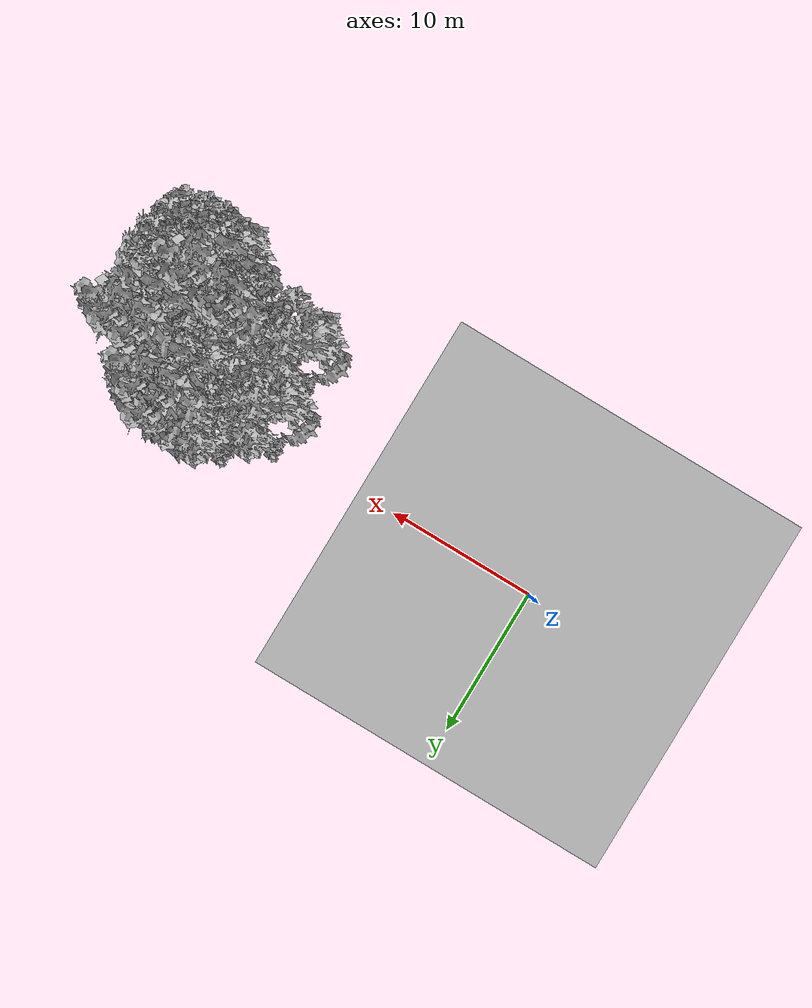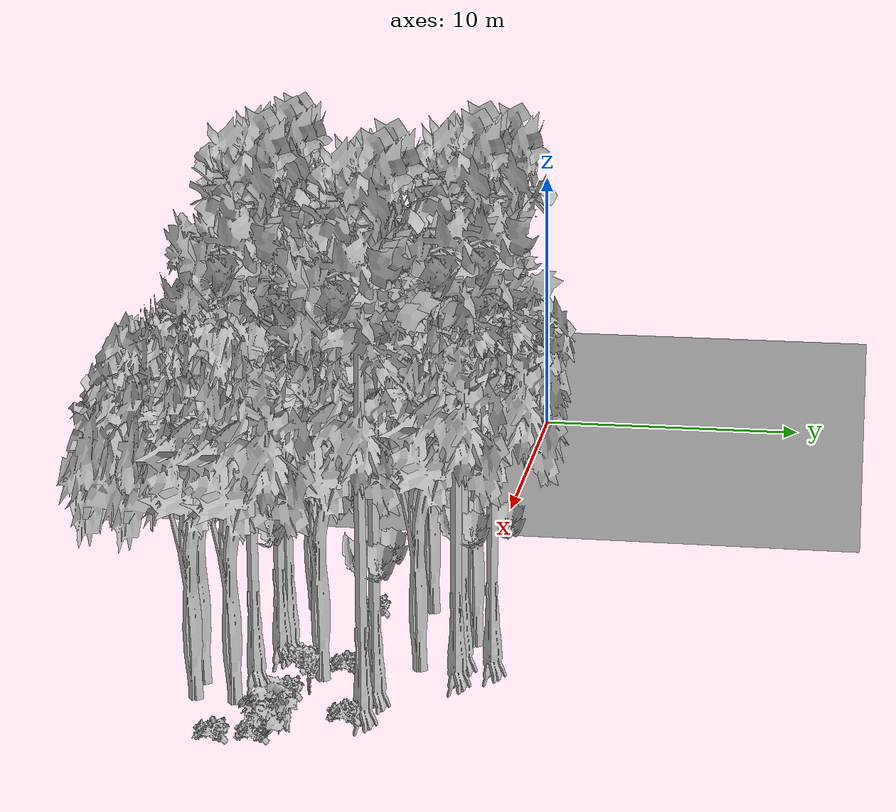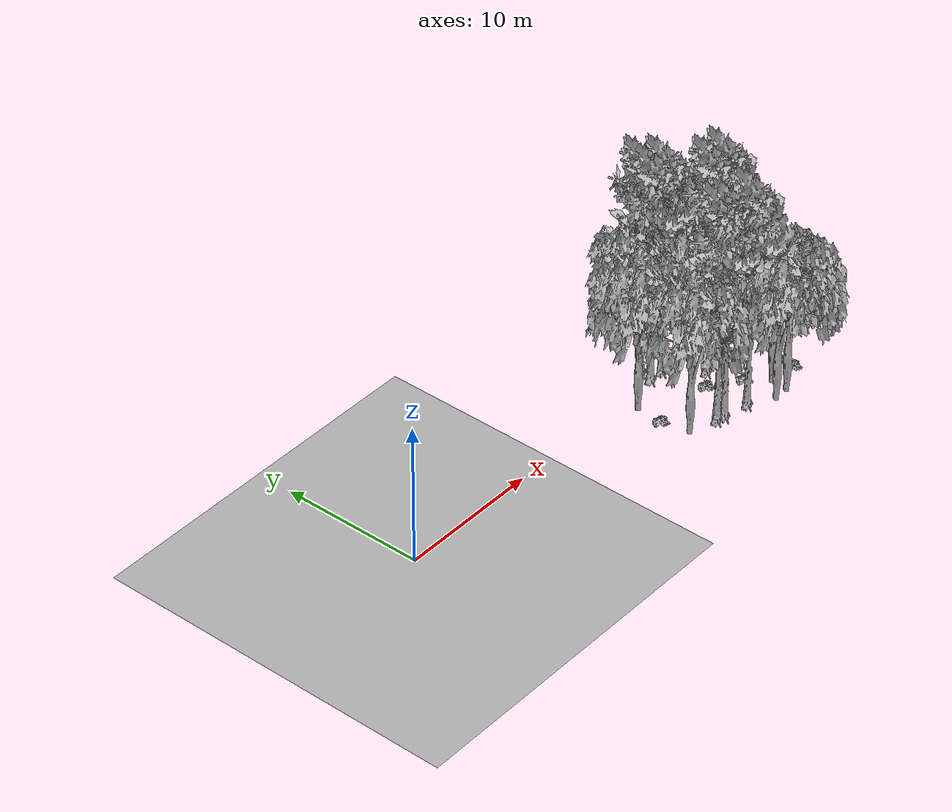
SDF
<sdf version="1.7">
 <world name="default">
  <model name="ground_plane">
   <static>1</static>
   <link name="link">
    <collision name="collision">
     <pose>-50 0 0 0 -0 0</pose>
     <geometry><plane><normal>0 0 1</normal><size>80 80</size></plane></geometry>
     <surface><contact><ode><min_depth>0.01</min_depth><max_vel>0</max_vel></ode></contact></surface>
    </collision>
    <visual name="grass">
     <cast_shadows>0</cast_shadows>
     <geometry>
      <mesh>
       <scale>0.46714285714285714 0.46714285714285714 0.1</scale>
       <uri>file://grass_plane/meshes/grass_plane.dae</uri>
      </mesh>
     </geometry>
    </visual>
   </link>
  </model>
  <model name="Tree 67">
   <static>1</static>
   <pose>19.972949258182574 -5.0214371791789745 0 1.57079 -0 0</pose>
   <link name="link">
    <collision name="collision">
     <geometry><mesh><scale>3.5 5 3.5</scale><uri>model://tree_2/meshes/tree_2.obj</uri></mesh></geometry>
    </collision>
    <visual name="visual">
     <geometry><mesh><scale>3.5 5 3.5</scale><uri>model://tree_2/meshes/tree_2.obj</uri></mesh></geometry>
    </visual>
   </link>
  </model>
  <model name="Tree 86">
   <static>1</static>
   <pose>22.14440302657154 0.6737569132276349 0 1.57079 -0 0</pose>
   <link name="link">
    <collision name="collision">
     <geometry><mesh><scale>3.5 5 3.5</scale><uri>model://tree_2/meshes/tree_2.obj</uri></mesh></geometry>
    </collision>
    <visual name="visual">
     <geometry><mesh><scale>3.5 5 3.5</scale><uri>model://tree_2/meshes/tree_2.obj</uri></mesh></geometry>
    </visual>
   </link>
  </model>
  <model name="Tree 102">
   <static>1</static>
   <pose>24.90332974942104 -5.781912882090417 0 1.57079 -0 0</pose>
   <link name="link">
    <collision name="collision">
     <geometry><mesh><scale>3.5 5 3.5</scale><uri>model://tree_9/meshes/tree_9.obj</uri></mesh></geometry>
    </collision>
    <visual name="visual">
     <geometry><mesh><scale>3.5 5 3.5</scale><uri>model://tree_9/meshes/tree_9.obj</uri></mesh></geometry>
    </visual>
   </link>
  </model>
  <model name="Tree 125">
   <static>1</static>
   <pose>23.03793562026256 -5.417929464851248 0 1.57079 -0 0</pose>
   <link name="link">
    <collision name="collision">
     <geometry><mesh><scale>3.5 5 3.5</scale><uri>model://tree_9/meshes/tree_9.obj</uri></mesh></geometry>
    </collision>
    <visual name="visual">
     <geometry><mesh><scale>3.5 5 3.5</scale><uri>model://tree_9/meshes/tree_9.obj</uri></mesh></geometry>
    </visual>
   </link>
  </model>
  <model name="Tree 127">
   <static>1</static>
   <pose>25.90554901159942 -1.8025286251503019 0 1.57079 -0 0</pose>
   <link name="link">
    <collision name="collision">
     <geometry><mesh><scale>3.5 5 3.5</scale><uri>model://tree_9/meshes/tree_9.obj</uri></mesh></geometry>
    </collision>
    <visual name="visual">
     <geometry><mesh><scale>3.5 5 3.5</scale><uri>model://tree_9/meshes/tree_9.obj</uri></mesh></geometry>
    </visual>
   </link>
  </model>
  <model name="Tree 135">
   <static>1</static>
   <pose>27.331972460678188 -5.824056933868739 0 1.57079 -0 0</pose>
   <link name="link">
    <collision name="collision">
     <geometry><mesh><scale>3.5 5 3.5</scale><uri>model://tree_2/meshes/tree_2.obj</uri></mesh></geometry>
    </collision>
    <visual name="visual">
     <geometry><mesh><scale>3.5 5 3.5</scale><uri>model://tree_2/meshes/tree_2.obj</uri></mesh></geometry>
    </visual>
   </link>
  </model>
  <model name="Tree 145">
   <static>1</static>
   <pose>22.444569299932603 -5.280983196970041 0 1.57079 -0 0</pose>
   <link name="link">
    <collision name="collision">
     <geometry><mesh><scale>3.5 5 3.5</scale><uri>model://tree_9/meshes/tree_9.obj</uri></mesh></geometry>
    </collision>
    <visual name="visual">
     <geometry><mesh><scale>3.5 5 3.5</scale><uri>model://tree_9/meshes/tree_9.obj</uri></mesh></geometry>
    </visual>
   </link>
  </model>
  <model name="Tree 172">
   <static>1</static>
   <pose>27.174416490159757 -7.073558698560014 0 1.57079 -0 0</pose>
   <link name="link">
    <collision name="collision">
     <geometry><mesh><scale>3.5 5 3.5</scale><uri>model://tree_2/meshes/tree_2.obj</uri></mesh></geometry>
    </collision>
    <visual name="visual">
     <geometry><mesh><scale>3.5 5 3.5</scale><uri>model://tree_2/meshes/tree_2.obj</uri></mesh></geometry>
    </visual>
   </link>
  </model>
  <model name="Tree 202">
   <static>1</static>
   <pose>27.202756527863983 -1.9394976981162344 0 1.57079 -0 0</pose>
   <link name="link">
    <collision name="collision">
     <geometry><mesh><scale>3.5 5 3.5</scale><uri>model://tree_9/meshes/tree_9.obj</uri></mesh></geometry>
    </collision>
    <visual name="visual">
     <geometry><mesh><scale>3.5 5 3.5</scale><uri>model://tree_9/meshes/tree_9.obj</uri></mesh></geometry>
    </visual>
   </link>
  </model>
  <model name="Tree 233">
   <static>1</static>
   <pose>23.212246118998422 1.3530416918188024 0 1.57079 -0 0</pose>
   <link name="link">
    <collision name="collision">
     <geometry><mesh><scale>3.5 5 3.5</scale><uri>model://tree_9/meshes/tree_9.obj</uri></mesh></geometry>
    </collision>
    <visual name="visual">
     <geometry><mesh><scale>3.5 5 3.5</scale><uri>model://tree_9/meshes/tree_9.obj</uri></mesh></geometry>
    </visual>
   </link>
  </model>
  <model name="Tree 340">
   <static>1</static>
   <pose>24.143240560548122 0.3885230326330529 0 1.57079 -0 0</pose>
   <link name="link">
    <collision name="collision">
     <geometry><mesh><scale>3.5 5 3.5</scale><uri>model://tree_9/meshes/tree_9.obj</uri></mesh></geometry>
    </collision>
    <visual name="visual">
     <geometry><mesh><scale>3.5 5 3.5</scale><uri>model://tree_9/meshes/tree_9.obj</uri></mesh></geometry>
    </visual>
   </link>
  </model>
  <model name="Tree 388">
   <static>1</static>
   <pose>26.052093435532043 -7.112790517504173 0 1.57079 -0 0</pose>
   <link name="link">
    <collision name="collision">
     <geometry><mesh><scale>3.5 5 3.5</scale><uri>model://tree_2/meshes/tree_2.obj</uri></mesh></geometry>
    </collision>
    <visual name="visual">
     <geometry><mesh><scale>3.5 5 3.5</scale><uri>model://tree_2/meshes/tree_2.obj</uri></mesh></geometry>
    </visual>
   </link>
  </model>
  <model name="Tree 398">
   <static>1</static>
   <pose>23.012842993955836 0.39861222572546495 0 1.57079 -0 0</pose>
   <link name="link">
    <collision name="collision">
     <geometry><mesh><scale>3.5 5 3.5</scale><uri>model://tree_9/meshes/tree_9.obj</uri></mesh></geometry>
    </collision>
    <visual name="visual">
     <geometry><mesh><scale>3.5 5 3.5</scale><uri>model://tree_9/meshes/tree_9.obj</uri></mesh></geometry>
    </visual>
   </link>
  </model>
  <model name="Tree 438">
   <static>1</static>
   <pose>24.250830310506906 -0.7604997836107259 0 1.57079 -0 0</pose>
   <link name="link">
    <collision name="collision">
     <geometry><mesh><scale>3.5 5 3.5</scale><uri>model://tree_2/meshes/tree_2.obj</uri></mesh></geometry>
    </collision>
    <visual name="visual">
     <geometry><mesh><scale>3.5 5 3.5</scale><uri>model://tree_2/meshes/tree_2.obj</uri></mesh></geometry>
    </visual>
   </link>
  </model>
  <model name="Tree 490">
   <static>1</static>
   <pose>25.35320381769607 -3.5729562434839153 0 1.57079 -0 0</pose>
   <link name="link">
    <collision name="collision">
     <geometry><mesh><scale>3.5 5 3.5</scale><uri>model://tree_2/meshes/tree_2.obj</uri></mesh></geometry>
    </collision>
    <visual name="visual">
     <geometry><mesh><scale>3.5 5 3.5</scale><uri>model://tree_2/meshes/tree_2.obj</uri></mesh></geometry>
    </visual>
   </link>
  </model>
  <model name="Tree 530">
   <static>1</static>
   <pose>19.708249494783523 -1.1512490273948544 0 1.57079 -0 0</pose>
   <link name="link">
    <collision name="collision">
     <geometry><mesh><scale>3.5 5 3.5</scale><uri>model://tree_2/meshes/tree_2.obj</uri></mesh></geometry>
    </collision>
    <visual name="visual">
     <geometry><mesh><scale>3.5 5 3.5</scale><uri>model://tree_2/meshes/tree_2.obj</uri></mesh></geometry>
    </visual>
   </link>
  </model>
  <model name="Bush 69">
   <static>1</static>
   <pose>26.268328734194043 -4.503679349175229 0 1.57079 -0 0</pose>
   <link name="link">
    <collision name="collision">
     <geometry><mesh><scale>2 2 2</scale><uri>model://bush_2/meshes/bush_2.obj</uri></mesh></geometry>
     <surface><contact><collide_without_contact>false</collide_without_contact></contact></surface>
    </collision>
    <visual name="visual">
     <geometry><mesh><scale>2 2 2</scale><uri>model://bush_2/meshes/bush_2.obj</uri></mesh></geometry>
    </visual>
   </link>
  </model>
  <model name="Bush 138">
   <static>1</static>
   <pose>24.208062141333947 -3.0848725455274035 0 1.57079 -0 0</pose>
   <link name="link">
    <collision name="collision">
     <geometry><mesh><scale>2 2 2</scale><uri>model://bush_2/meshes/bush_2.obj</uri></mesh></geometry>
     <surface><contact><collide_without_contact>false</collide_without_contact></contact></surface>
    </collision>
    <visual name="visual">
     <geometry><mesh><scale>2 2 2</scale><uri>model://bush_2/meshes/bush_2.obj</uri></mesh></geometry>
    </visual>
   </link>
  </model>
  <model name="Bush 146">
   <static>1</static>
   <pose>27.70521391626248 -2.4011765203459987 0 1.57079 -0 0</pose>
   <link name="link">
    <collision name="collision">
     <geometry><mesh><scale>2 2 2</scale><uri>model://bush_2/meshes/bush_2.obj</uri></mesh></geometry>
     <surface><contact><collide_without_contact>false</collide_without_contact></contact></surface>
    </collision>
    <visual name="visual">
     <geometry><mesh><scale>2 2 2</scale><uri>model://bush_2/meshes/bush_2.obj</uri></mesh></geometry>
    </visual>
   </link>
  </model>
  <model name="Bush 178">
   <static>1</static>
   <pose>29.591600870577636 -4.336504916595189 0 1.57079 -0 0</pose>
   <link name="link">
    <collision name="collision">
     <geometry><mesh><scale>2 2 2</scale><uri>model://bush_1/meshes/bush_1.obj</uri></mesh></geometry>
     <surface><contact><collide_without_contact>false</collide_without_contact></contact></surface>
    </collision>
    <visual name="visual">
     <geometry><mesh><scale>2 2 2</scale><uri>model://bush_1/meshes/bush_1.obj</uri></mesh></geometry>
    </visual>
   </link>
  </model>
  <model name="Bush 303">
   <static>1</static>
   <pose>26.515311143845054 -3.7415702338875363 0 1.57079 -0 0</pose>
   <link name="link">
    <collision name="collision">
     <geometry><mesh><scale>2 2 2</scale><uri>model://bush_5/meshes/bush_5.obj</uri></mesh></geometry>
     <surface><contact><collide_without_contact>false</collide_without_contact></contact></surface>
    </collision>
    <visual name="visual">
     <geometry><mesh><scale>2 2 2</scale><uri>model://bush_5/meshes/bush_5.obj</uri></mesh></geometry>
    </visual>
   </link>
  </model>
  <model name="Bush 510">
   <static>1</static>
   <pose>29.282075473499773 -4.80234642409517 0 1.57079 -0 0</pose>
   <link name="link">
    <collision name="collision">
     <geometry><mesh><scale>2 2 2</scale><uri>model://bush_2/meshes/bush_2.obj</uri></mesh></geometry>
     <surface><contact><collide_without_contact>false</collide_without_contact></contact></surface>
    </collision>
    <visual name="visual">
     <geometry><mesh><scale>2 2 2</scale><uri>model://bush_2/meshes/bush_2.obj</uri></mesh></geometry>
    </visual>
   </link>
  </model>
  <model name="Bush 512">
   <static>1</static>
   <pose>29.40060052970253 -6.006568943817435 0 1.57079 -0 0</pose>
   <link name="link">
    <collision name="collision">
     <geometry><mesh><scale>2 2 2</scale><uri>model://bush_2/meshes/bush_2.obj</uri></mesh></geometry>
     <surface><contact><collide_without_contact>false</collide_without_contact></contact></surface>
    </collision>
    <visual name="visual">
     <geometry><mesh><scale>2 2 2</scale><uri>model://bush_2/meshes/bush_2.obj</uri></mesh></geometry>
    </visual>
   </link>
  </model>
  <model name="Bush 531">
   <static>1</static>
   <pose>19.605926743642904 -3.102973370438022 0 1.57079 -0 0</pose>
   <link name="link">
    <collision name="collision">
     <geometry><mesh><scale>2 2 2</scale><uri>model://bush_2/meshes/bush_2.obj</uri></mesh></geometry>
     <surface><contact><collide_without_contact>false</collide_without_contact></contact></surface>
    </collision>
    <visual name="visual">
     <geometry><mesh><scale>2 2 2</scale><uri>model://bush_2/meshes/bush_2.obj</uri></mesh></geometry>
    </visual>
   </link>
  </model>
 </world>
</sdf>
